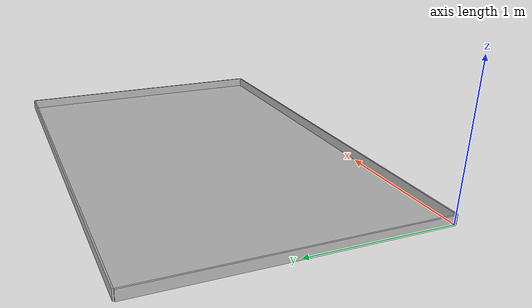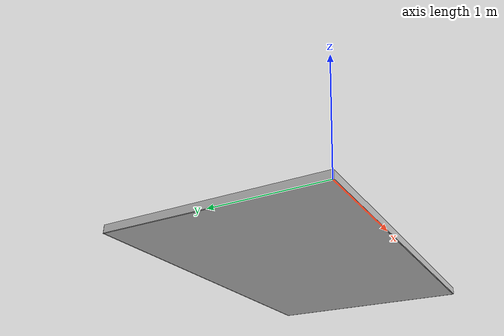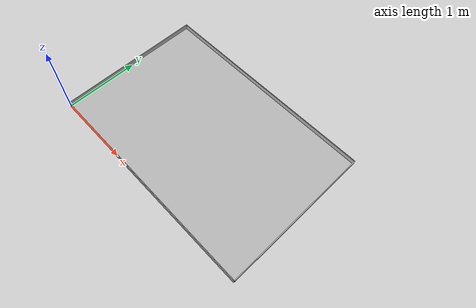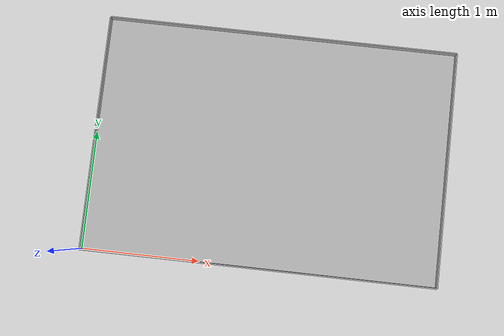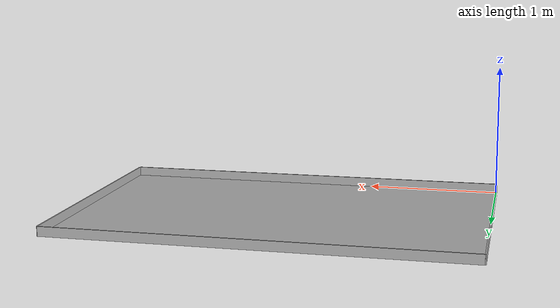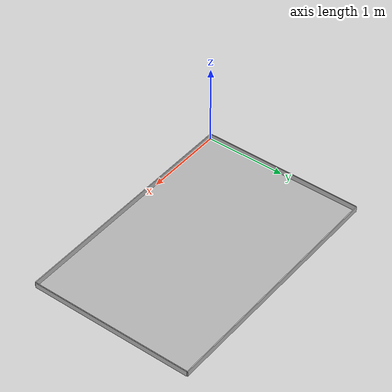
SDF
<?xml version='1.0'?>
<sdf version='1.6'>
  <model name='arena'>
    <static>1</static>

    <link name='ground'>
      <pose frame=''>1.5 1 0 0 0 0</pose>
      <collision name='collision'>
        <geometry>
          <plane>
            <normal>0 0 1</normal>
            <size>3 2</size>
          </plane>
        </geometry>
        <surface>
          <friction>
            <ode>
              <mu>100</mu>
              <mu2>50</mu2>
            </ode>
          </friction>
        </surface>
      </collision>
      <visual name='visual'>
        <cast_shadows>0</cast_shadows>
        <geometry>
          <plane>
            <normal>0 0 1</normal>
            <size>3 2</size>
          </plane>
        </geometry>
        <material name="orange"/>
      </visual>
    </link>

    <link name='wall_1'>
      <pose>1.50 -0.005 0.035 0 0 0</pose>
      <visual name='visual'>
        <geometry>
          <box>
            <size>3.005 0.01 0.07</size>
          </box>
        </geometry>
      </visual>
      <collision name='collision'>
        <geometry>
          <box>
            <size>3.005 0.01 0.07</size>
          </box>
        </geometry>
      </collision>
    </link>

    <link name='wall_2'>
      <pose>1.50 2.005 0.035 0 0 0</pose>
      <visual name='visual'>
        <geometry>
          <box>
            <size>3.005 0.01 0.07</size>
          </box>
        </geometry>
      </visual>
      <collision name='collision'>
        <geometry>
          <box>
            <size>3.005 0.01 0.07</size>
          </box>
        </geometry>
      </collision>
    </link>

    <link name='wall_3'>
      <pose>-0.005 1 0.035 0 0 1.5708</pose>
      <visual name='visual'>
        <geometry>
          <box>
            <size>2 0.01 0.07</size>
          </box>
        </geometry>
        </visual>
      <collision name='collision'>
        <geometry>
          <box>
            <size>2 0.01 0.07</size>
          </box>
        </geometry>
        </collision>
    </link>

    <link name='wall_4'>
      <pose>3.005 1 0.035 0 -0 1.5708</pose>
      <visual name='visual'>
        <geometry>
          <box>
            <size>2 0.01 0.07</size>
          </box>
        </geometry>
      </visual>
      <collision name='collision'>
        <geometry>
          <box>
            <size>2 0.01 0.07</size>
          </box>
        </geometry>
      </collision>
    </link>
  </model>
</sdf>
